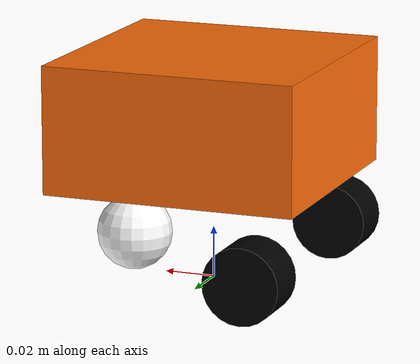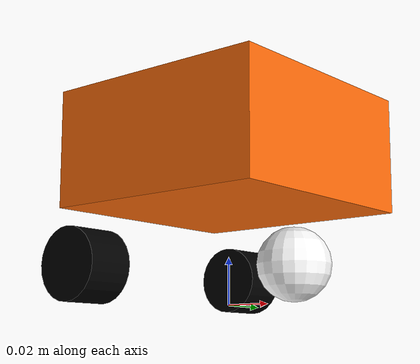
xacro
<?xml version="1.0"?>
<robot xmlns:xacro="http://www.ros.org/wiki/xacro" name="diffdrive_robot">

    <xacro:arg name="prefix" default="" />

    <!-- Import Rviz colors -->
    <xacro:include filename="$(find description)/config/materials.xacro" />
    <!-- Import diffbot description -->
    <xacro:include filename="$(find description)/urdf/diffbot_description.urdf.xacro" />

    <xacro:diffbot prefix="$(arg prefix)" />

</robot>

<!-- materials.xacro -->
<!--材质-->
<robot>

    <material name="black">
        <color rgba="0.0 0.0 0.0 1.0"/>
    </material>

    <material name="blue">
        <color rgba="0.0 0.0 0.8 1.0"/>
    </material>

    <material name="green">
        <color rgba="0.0 0.8 0.0 1.0"/>
    </material>

    <material name="grey">
        <color rgba="0.2 0.2 0.2 1.0"/>
    </material>

    <material name="orange">
        <color rgba="${255/255} ${108/255} ${10/255} 1.0"/>
    </material>

    <material name="brown">
        <color rgba="${222/255} ${207/255} ${195/255} 1.0"/>
    </material>

    <material name="red">
        <color rgba="0.8 0.0 0.0 1.0"/>
    </material>

    <material name="white">
        <color rgba="1.0 1.0 1.0 1.0"/>
    </material>

</robot>

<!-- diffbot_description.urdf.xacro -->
<robot xmlns:xacro="http://www.ros.org/wiki/xacro">

    <xacro:macro name="diffbot" params="prefix">

        <!-- Constants for robot dimensions -->
        <xacro:property name="PI" value="3.1415926535897931"/>
        <!-- arbitrary value for base -->
        <xacro:property name="base_mass" value="0.3" />
        <xacro:property name="base_width" value="0.1" />
        <xacro:property name="base_length" value="0.1" />
        <xacro:property name="base_height" value="0.05" />
        <!-- arbitrary value for wheel -->
        <xacro:property name="wheel_mass" value="0.3" />
        <xacro:property name="wheel_len" value="0.020" />
        <xacro:property name="wheel_radius" value="0.015" />
        <!-- arbitrary value for caster wheel -->
        <xacro:property name="caster_wheel_mass" value="0.1" />
        <xacro:property name="caster_wheel_radius" value="0.015" />
        <!-- Space btw top of beam and the each joint -->
        <xacro:property name="z_offset" value="-${base_height/2}" />
        <xacro:property name="x_offset_head" value="${base_length/3}" />
        <xacro:property name="x_offset_tail" value="-${base_length/3}" />

        <!-- Foot Print -->
        <link name="${prefix}base_footprint"/>

        <!-- Base Link -->
        <link name="${prefix}base_link">
            <collision>
                <origin xyz="0 0 0" rpy="0 0 0"/>
                <geometry>
                    <box size="${base_width} ${base_length} ${base_height}"/>
                </geometry>
            </collision>

            <visual>
                <origin xyz="0 0 ${base_height/2}" rpy="0 0 0"/>
                <geometry>
                    <box size="${base_width} ${base_length} ${base_height}"/>
                </geometry>
                <material name="orange"/>
            </visual>

            <inertial>
                <origin xyz="0 0 0" rpy="0 0 0"/>
                <mass value="${base_mass}"/>
                <inertia ixx="${base_mass / 12.0 * (base_length*base_length + base_height*base_height)}" ixy="0.0" ixz="0.0" iyy="${base_mass / 12.0 * (base_height*base_height + base_width*base_width)}" iyz="0.0" izz="${base_mass / 12.0 * (base_width*base_width + base_length*base_length)}"/>
            </inertial>
        </link>

        <!-- left wheel Link -->
        <link name="${prefix}left_wheel">
            <collision>
                <origin xyz="0 0 0" rpy="${PI/2} 0 0"/>
                <geometry>
                    <cylinder length="${wheel_len}" radius="${wheel_radius}"/>
                </geometry>
            </collision>

            <visual>
                <origin xyz="0 0 0" rpy="${PI/2} 0 0"/>
                <geometry>
                    <cylinder length="${wheel_len}" radius="${wheel_radius}"/>
                </geometry>
                <material name="black"/>
            </visual>

            <inertial>
                <origin xyz="0 0 0" rpy="${PI/2} 0 0"/>
                <mass value="${wheel_mass}"/>
                <inertia ixx="${wheel_mass / 12.0 * (3*wheel_radius*wheel_radius + wheel_len*wheel_len)}" ixy="0.0" ixz="0.0" iyy="${wheel_mass / 12.0 * (3*wheel_radius*wheel_radius + wheel_len*wheel_len)}" iyz="0.0" izz="${wheel_mass / 2.0 * wheel_radius*wheel_radius}"/>
            </inertial>
        </link>

        <!-- right wheel Link -->
        <link name="${prefix}right_wheel">
            <collision>
                <origin xyz="0 0 0" rpy="${PI/2} 0 0"/>
                <geometry>
                    <cylinder length="${wheel_len}" radius="${wheel_radius}"/>
                </geometry>
            </collision>

            <visual>
                <origin xyz="0 0 0" rpy="${PI/2} 0 0"/>
                <geometry>
                    <cylinder length="${wheel_len}" radius="${wheel_radius}"/>
                </geometry>
                <material name="black"/>
            </visual>

            <inertial>
                <origin xyz="0 0 0" rpy="${PI/2} 0 0"/>
                <mass value="${wheel_mass}"/>
                <inertia ixx="${wheel_mass / 12.0 * (3*wheel_radius*wheel_radius + wheel_len*wheel_len)}" ixy="0.0" ixz="0.0" iyy="${wheel_mass / 12.0 * (3*wheel_radius*wheel_radius + wheel_len*wheel_len)}" iyz="0.0" izz="${wheel_mass / 2.0 * wheel_radius*wheel_radius}"/>
            </inertial>
        </link>

        <!-- caster frontal wheel Link -->
        <link name="${prefix}caster_frontal_wheel">
            <collision>
                <origin xyz="0 0 0" rpy="0 0 0"/>
                <geometry>
                    <sphere radius="${caster_wheel_radius}"/>
                </geometry>
            </collision>

            <visual>
                <origin xyz="0 0 0" rpy="0 0 0"/>
                <geometry>
                    <sphere radius="${caster_wheel_radius}"/>
                </geometry>
                <material name="white"/>
            </visual>

            <inertial>
                <origin xyz="0 0 0" rpy="0 0 0"/>
                <mass value="${caster_wheel_mass}"/>
                <inertia ixx="${caster_wheel_mass * 0.4 * (caster_wheel_radius * caster_wheel_radius)}" ixy="0.0" ixz="0.0" iyy="${caster_wheel_mass * 0.4 * (caster_wheel_radius * caster_wheel_radius)}" iyz="0.0" izz="${caster_wheel_mass * 0.4 * (caster_wheel_radius * caster_wheel_radius)}"/>
            </inertial>
        </link>

        <joint name="${prefix}base_link_joint" type="fixed">
            <parent link="${prefix}base_footprint"/>
            <child link="${prefix}base_link"/>
            <origin xyz="0 0 ${wheel_radius - z_offset}" rpy="0 0 0"/>
        </joint>

        <joint name="${prefix}left_wheel_joint" type="continuous">
            <parent link="${prefix}base_link"/>
            <child link="${prefix}left_wheel"/>
            <origin xyz="${x_offset_tail} -${base_width/2} ${z_offset}" rpy="0 0 0"/>
            <axis xyz="0 1 0"/>
            <dynamics damping="0.2"/>
        </joint>

        <joint name="${prefix}right_wheel_joint" type="continuous">
            <parent link="${prefix}base_link"/>
            <child link="${prefix}right_wheel"/>
            <origin xyz="${x_offset_tail} ${base_width/2} ${z_offset}" rpy="0 0 0"/>
            <axis xyz="0 1 0"/>
            <dynamics damping="0.2"/>
        </joint>

        <joint name="${prefix}caster_frontal_wheel_joint" type="fixed">
            <parent link="${prefix}base_link"/>
            <child link="${prefix}caster_frontal_wheel"/>
            <origin xyz="${x_offset_head} 0 ${z_offset}" rpy="0 0 0"/>
        </joint>

    </xacro:macro>

</robot>
